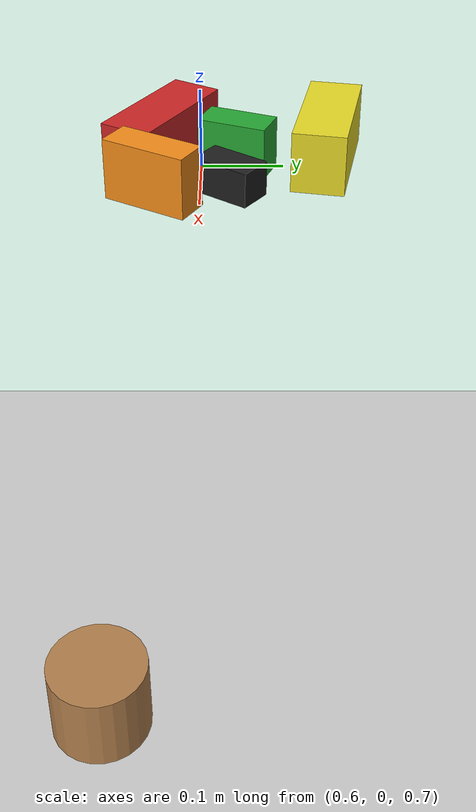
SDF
<sdf version="1.4">
 <world name="default">
  <light name="sun" type="directional">
   <pose>0 0 10 0 -0 0</pose>
   <diffuse>0.8 0.8 0.8 1</diffuse>
   <specular>0.2 0.2 0.2 1</specular>
   <attenuation>
    <range>1000</range>
    <constant>0.9</constant>
    <linear>0.01</linear>
    <quadratic>0.001</quadratic>
   </attenuation>
   <direction>-0.5 0.1 -0.9</direction>
  </light>
  <scene><shadows>0</shadows><ambient>0.4 0.4 0.4 1</ambient><background>0.7 0.7 0.7 1</background></scene>
  <model name="ground_plane">
   <static>1</static>
   <link name="link">
    <collision name="collision">
     <geometry><plane><normal>0 0 1</normal><size>100 100</size></plane></geometry>
     <surface><friction><ode><mu>100</mu><mu2>50</mu2></ode></friction></surface>
    </collision>
    <visual name="visual">
     <cast_shadows>0</cast_shadows>
     <geometry><plane><normal>0 0 1</normal><size>100 100</size></plane></geometry>
     <material>
      <script><uri>file://media/materials/scripts/gazebo.material</uri><name>Gazebo/Grey</name></script>
     </material>
    </visual>
    <velocity_decay><linear>0</linear><angular>0</angular></velocity_decay>
   </link>
  </model>
  <physics type="ode">
   <max_step_size>0.001</max_step_size>
   <real_time_factor>1</real_time_factor>
   <real_time_update_rate>1000</real_time_update_rate>
   <gravity>0 0 -9.8</gravity>
  </physics>
  <spherical_coordinates>
   <surface_model>EARTH_WGS84</surface_model>
   <latitude_deg>0</latitude_deg>
   <longitude_deg>0</longitude_deg>
   <elevation>0</elevation>
   <heading_deg>0</heading_deg>
  </spherical_coordinates>
  <model name="wood_cylinder_5x2cm">
   <link name="link">
    <pose>0 0 0.05 0 -0 0</pose>
    <inertial>
     <mass>0.001</mass>
     <inertia>
      <ixx>0.000101167</ixx>
      <ixy>0</ixy>
      <ixz>0</ixz>
      <iyy>6.1167e-05</iyy>
      <iyz>0</iyz>
      <izz>6.1167e-05</izz>
     </inertia>
    </inertial>
    <collision name="collision">
     <geometry><cylinder><radius>0.03</radius><length>0.05</length></cylinder></geometry>
     <surface><contact><ode><max_vel>0.1</max_vel><min_depth>0.001</min_depth></ode></contact></surface>
    </collision>
    <visual name="visual">
     <geometry><cylinder><radius>0.03</radius><length>0.05</length></cylinder></geometry>
     <material>
      <script><uri>file://media/materials/scripts/gazebo.material</uri><name>Gazebo/Wood</name></script>
     </material>
    </visual>
    <velocity_decay><linear>0</linear><angular>0</angular></velocity_decay>
   </link>
   <pose>1.42794 -0.038892 0.714935 -0.004291 0.001163 3.01319</pose>
   <static>0</static>
  </model>
  <model name="rectangle_green">
   <link name="link">
    <pose>0 0 0.05 0 -0 0</pose>
    <inertial>
     <mass>0.001</mass>
     <inertia>
      <ixx>0.000101167</ixx>
      <ixy>0</ixy>
      <ixz>0</ixz>
      <iyy>6.1167e-05</iyy>
      <iyz>0</iyz>
      <izz>6.1167e-05</izz>
     </inertia>
    </inertial>
    <collision name="collision">
     <geometry><box><size>0.06 0.08 0.04</size></box></geometry>
     <surface><contact><ode><max_vel>0.1</max_vel><min_depth>0.001</min_depth></ode></contact></surface>
    </collision>
    <visual name="visual">
     <geometry><box><size>0.06 0.08 0.04</size></box></geometry>
     <material>
      <script><uri>file://media/materials/scripts/gazebo.material</uri><name>Gazebo/Green</name></script>
     </material>
    </visual>
    <velocity_decay><linear>0</linear><angular>0</angular></velocity_decay>
   </link>
   <pose>0.726794 0.024619 0.769354 0.452575 -1.56788 -0.844343</pose>
   <static>0</static>
  </model>
  <model name="rectangle_orange">
   <link name="link">
    <pose>0 0 0.05 0 -0 0</pose>
    <inertial>
     <mass>0.001</mass>
     <inertia>
      <ixx>0.000101167</ixx>
      <ixy>0</ixy>
      <ixz>0</ixz>
      <iyy>6.1167e-05</iyy>
      <iyz>0</iyz>
      <izz>6.1167e-05</izz>
     </inertia>
    </inertial>
    <collision name="collision">
     <geometry><box><size>0.07 0.1 0.04</size></box></geometry>
     <surface><contact><ode><max_vel>0.1</max_vel><min_depth>0.001</min_depth></ode></contact></surface>
    </collision>
    <visual name="visual">
     <geometry><box><size>0.07 0.1 0.04</size></box></geometry>
     <material>
      <script><uri>file://media/materials/scripts/gazebo.material</uri><name>Gazebo/Orange</name></script>
     </material>
    </visual>
    <velocity_decay><linear>0</linear><angular>0</angular></velocity_decay>
   </link>
   <pose>0.809751 -0.072626 0.774819 2.50738 -1.56814 -3.04086</pose>
   <static>0</static>
  </model>
  <model name="rectangle_black">
   <link name="link">
    <pose>0 0 0.05 0 -0 0</pose>
    <inertial>
     <mass>0.001</mass>
     <inertia>
      <ixx>0.000101167</ixx>
      <ixy>0</ixy>
      <ixz>0</ixz>
      <iyy>6.1167e-05</iyy>
      <iyz>0</iyz>
      <izz>6.1167e-05</izz>
     </inertia>
    </inertial>
    <collision name="collision">
     <geometry><box><size>0.04 0.04 0.07</size></box></geometry>
     <surface><contact><ode><max_vel>0.1</max_vel><min_depth>0.001</min_depth></ode></contact></surface>
    </collision>
    <visual name="visual">
     <geometry><box><size>0.04 0.04 0.07</size></box></geometry>
     <material>
      <script><uri>file://media/materials/scripts/gazebo.material</uri><name>Gazebo/Black</name></script>
     </material>
    </visual>
    <velocity_decay><linear>0</linear><angular>0</angular></velocity_decay>
   </link>
   <pose>0.775767 0.075606 0.759981 -0.27705 -1.57066 1.2163</pose>
   <static>0</static>
  </model>
  <model name="wood_rectangle">
   <link name="link">
    <pose>0 0 0.05 0 -0 0</pose>
    <inertial>
     <mass>0.01</mass>
     <inertia>
      <ixx>0.000101167</ixx>
      <ixy>0</ixy>
      <ixz>0</ixz>
      <iyy>6.1167e-05</iyy>
      <iyz>0</iyz>
      <izz>6.1167e-05</izz>
     </inertia>
    </inertial>
    <collision name="collision">
     <geometry><box><size>0.06 0.15 0.06</size></box></geometry>
     <surface><contact><ode><max_vel>0.1</max_vel><min_depth>0.001</min_depth></ode></contact></surface>
    </collision>
    <visual name="visual">
     <geometry><box><size>0.06 0.15 0.06</size></box></geometry>
     <material>
      <script><uri>file://media/materials/scripts/gazebo.material</uri><name>Gazebo/Red</name></script>
     </material>
    </visual>
    <velocity_decay><linear>0</linear><angular>0</angular></velocity_decay>
   </link>
   <pose>0.647236 -0.043529 0.719985 -0.000148 -0.000143 -2.11396</pose>
   <static>0</static>
  </model>
  <model name="wood_cube_10cm">
   <link name="link">
    <pose>0 0 0.05 0 -0 0</pose>
    <inertial>
     <mass>0.01</mass>
     <inertia>
      <ixx>0.000101167</ixx>
      <ixy>0</ixy>
      <ixz>0</ixz>
      <iyy>6.1167e-05</iyy>
      <iyz>0</iyz>
      <izz>6.1167e-05</izz>
     </inertia>
    </inertial>
    <collision name="collision">
     <geometry><box><size>0.06 0.15 0.07</size></box></geometry>
     <surface><contact><ode><max_vel>0.1</max_vel><min_depth>0.001</min_depth></ode></contact></surface>
    </collision>
    <visual name="visual">
     <geometry><box><size>0.06 0.15 0.07</size></box></geometry>
     <material>
      <script><uri>file://media/materials/scripts/gazebo.material</uri><name>Gazebo/Yellow</name></script>
     </material>
    </visual>
    <velocity_decay><linear>0</linear><angular>0</angular></velocity_decay>
   </link>
   <pose>0.676791 0.145552 0.725 2e-06 9e-06 -1.76557</pose>
   <static>0</static>
  </model>
 </world>
</sdf>
